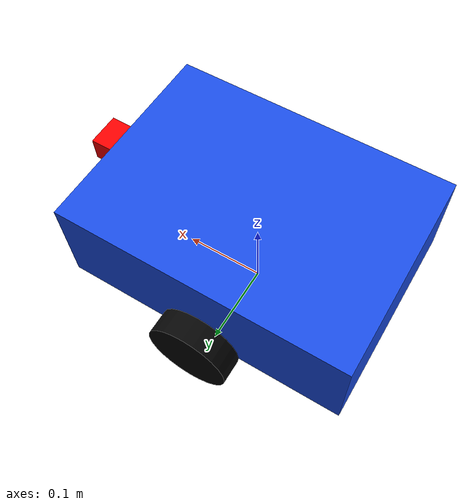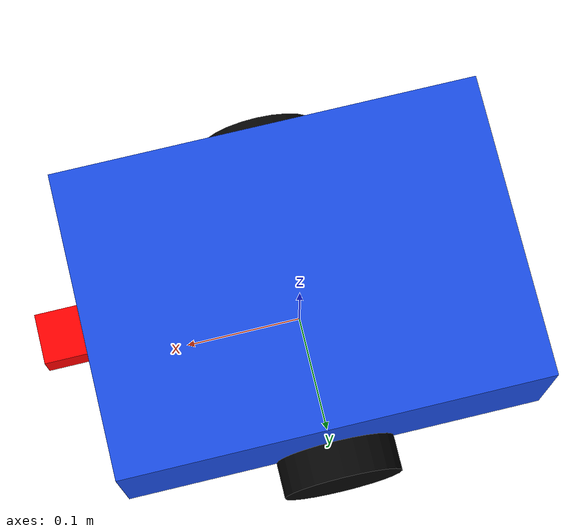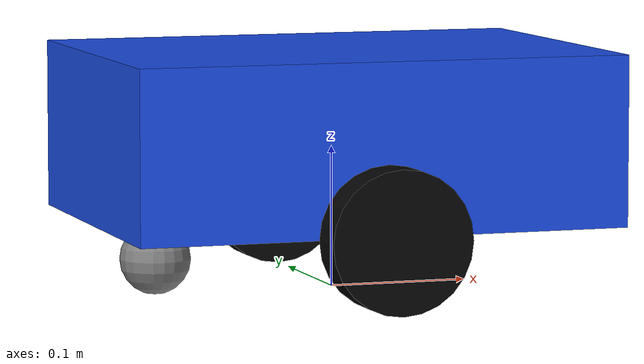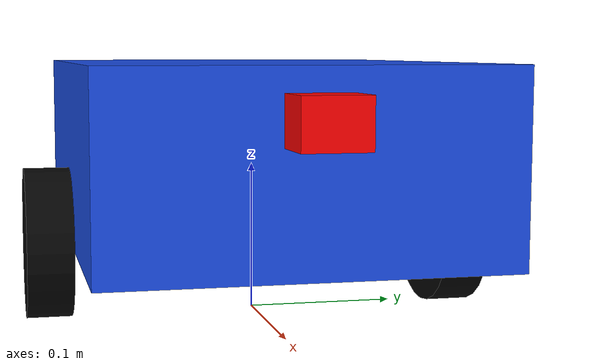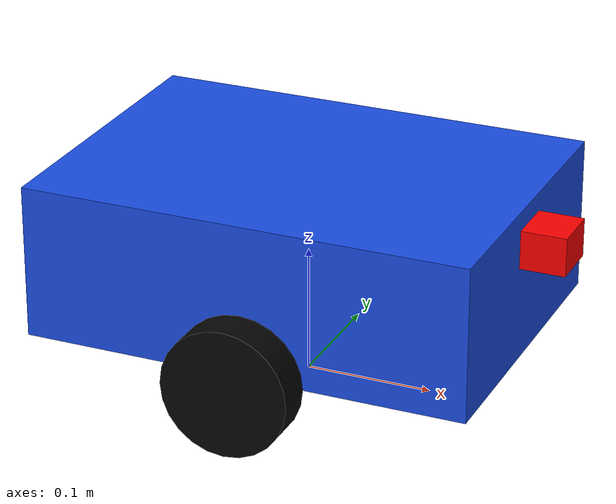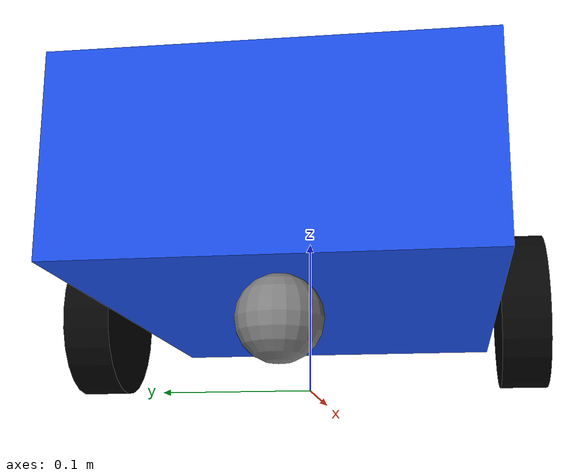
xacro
<?xml version="1.0"?>
<robot name="simple_diff_drive_robot" xmlns:xacro="http://www.ros.org/wiki/xacro">

  <!-- Properties -->

  <xacro:property name="base_length" value="0.35"/>
  <xacro:property name="base_width" value="0.25"/>
  <xacro:property name="base_height" value="0.12"/>

  <xacro:property name="wheel_radius" value="0.05"/>
  <xacro:property name="wheel_width" value="0.03"/>
  <xacro:property name="wheel_y_offset" value="0.14"/>
  <xacro:property name="wheel_x_offset" value="0.0"/>
  <xacro:property name="wheel_z_offset" value="${wheel_radius}"/>

  <xacro:property name="caster_radius" value="0.025"/>
  <xacro:property name="caster_x_offset" value="-0.13"/>
  <xacro:property name="caster_z_offset" value="${caster_radius}"/>

  <xacro:property name="laser_x_offset" value="0.18"/>
  <xacro:property name="laser_z_offset" value="0.14"/>

  <!-- Approximate inertial values -->
  <xacro:property name="base_mass" value="2.0"/>

  <!-- Materials -->

  <material name="blue">
    <color rgba="0.1 0.3 0.9 1.0"/>
  </material>

  <material name="black">
    <color rgba="0.02 0.02 0.02 1.0"/>
  </material>

  <material name="gray">
    <color rgba="0.5 0.5 0.5 1.0"/>
  </material>

  <material name="red">
    <color rgba="1.0 0.0 0.0 1.0"/>
  </material>

  <!-- Base Link -->

  <link name="base_link">
    <visual>
      <origin xyz="0 0 ${base_height / 2.0 + wheel_radius}" rpy="0 0 0"/>
      <geometry>
        <box size="${base_length} ${base_width} ${base_height}"/>
      </geometry>
      <material name="blue"/>
    </visual>

    <collision>
      <origin xyz="0 0 ${base_height / 2.0 + wheel_radius}" rpy="0 0 0"/>
      <geometry>
        <box size="${base_length} ${base_width} ${base_height}"/>
      </geometry>
    </collision>

    <inertial>
      <origin xyz="0 0 ${base_height / 2.0 + wheel_radius}" rpy="0 0 0"/>
      <mass value="${base_mass}"/>
      <inertia
        ixx="0.02" ixy="0.0" ixz="0.0"
        iyy="0.02" iyz="0.0"
        izz="0.02"/>
    </inertial>
  </link>

  <!-- Wheel Macro -->

  <xacro:macro name="wheel" params="prefix y_offset">
    <link name="${prefix}_wheel_link">
      <visual>
        <origin xyz="0 0 0" rpy="1.5708 0 0"/>
        <geometry>
          <cylinder radius="${wheel_radius}" length="${wheel_width}"/>
        </geometry>
        <material name="black"/>
      </visual>

      <collision>
        <origin xyz="0 0 0" rpy="1.5708 0 0"/>
        <geometry>
          <cylinder radius="${wheel_radius}" length="${wheel_width}"/>
        </geometry>
      </collision>

      <inertial>
        <origin xyz="0 0 0" rpy="0 0 0"/>
        <mass value="0.2"/>
        <inertia
          ixx="0.001" ixy="0.0" ixz="0.0"
          iyy="0.001" iyz="0.0"
          izz="0.001"/>
      </inertial>
    </link>

    <joint name="${prefix}_wheel_joint" type="continuous">
      <parent link="base_link"/>
      <child link="${prefix}_wheel_link"/>
      <origin xyz="${wheel_x_offset} ${y_offset} ${wheel_z_offset}" rpy="0 0 0"/>
      <axis xyz="0 1 0"/>
    </joint>
  </xacro:macro>

  <xacro:wheel prefix="left" y_offset="${wheel_y_offset}"/>
  <xacro:wheel prefix="right" y_offset="${-wheel_y_offset}"/>

  <!-- Caster -->

  <link name="caster_link">
    <visual>
      <origin xyz="0 0 0" rpy="0 0 0"/>
      <geometry>
        <sphere radius="${caster_radius}"/>
      </geometry>
      <material name="gray"/>
    </visual>

    <collision>
      <origin xyz="0 0 0" rpy="0 0 0"/>
      <geometry>
        <sphere radius="${caster_radius}"/>
      </geometry>
    </collision>

    <inertial>
      <origin xyz="0 0 0" rpy="0 0 0"/>
      <mass value="0.05"/>
      <inertia
        ixx="0.0001" ixy="0.0" ixz="0.0"
        iyy="0.0001" iyz="0.0"
        izz="0.0001"/>
    </inertial>
  </link>

  <joint name="caster_joint" type="fixed">
    <parent link="base_link"/>
    <child link="caster_link"/>
    <origin xyz="${caster_x_offset} 0 ${caster_z_offset}" rpy="0 0 0"/>
  </joint>

  <!-- Laser Link -->

  <link name="laser_link">
    <visual>
      <origin xyz="0 0 0" rpy="0 0 0"/>
      <geometry>
        <box size="0.06 0.04 0.03"/>
      </geometry>
      <material name="red"/>
    </visual>

    <collision>
      <origin xyz="0 0 0" rpy="0 0 0"/>
      <geometry>
        <box size="0.06 0.04 0.03"/>
      </geometry>
    </collision>

    <inertial>
      <origin xyz="0 0 0" rpy="0 0 0"/>
      <mass value="0.05"/>
      <inertia
        ixx="0.0001" ixy="0.0" ixz="0.0"
        iyy="0.0001" iyz="0.0"
        izz="0.0001"/>
    </inertial>
  </link>

  <joint name="laser_joint" type="fixed">
    <parent link="base_link"/>
    <child link="laser_link"/>
    <origin xyz="${laser_x_offset} 0 ${laser_z_offset}" rpy="0 0 0"/>
  </joint>

  <gazebo reference="laser_link">
    <sensor name="lidar" type="gpu_ray">
      <pose>0 0 0 0 0 0</pose>
      <topic>scan</topic>
      <frame_id>laser_link</frame_id>
      <update_rate>10</update_rate>
      <ray>
        <scan>
          <horizontal>
            <samples>360</samples>
            <resolution>1</resolution>
            <min_angle>-3.14159</min_angle>
            <max_angle>3.14159</max_angle>
          </horizontal>
        </scan>
        <range>
          <min>0.1</min>
          <max>12.0</max>
          <resolution>0.01</resolution>
        </range>
      </ray>
      <always_on>1</always_on>
      <visualize>true</visualize>
    </sensor>
  </gazebo>

  <gazebo>
    <plugin
      filename="gz-sim-sensors-system"
      name="gz::sim::systems::Sensors">
      <render_engine>ogre2</render_engine>
    </plugin>
  </gazebo>

  <!-- Gazebo Sim differential-drive controller -->
  <gazebo>
    <plugin
      filename="gz-sim-diff-drive-system"
      name="gz::sim::systems::DiffDrive">

      <left_joint>left_wheel_joint</left_joint>
      <right_joint>right_wheel_joint</right_joint>

      <wheel_separation>0.28</wheel_separation>
      <wheel_radius>0.05</wheel_radius>

      <topic>/cmd_vel</topic>
      <odom_topic>/odom</odom_topic>
      <tf_topic>/tf</tf_topic>

      <frame_id>odom</frame_id>
      <child_frame_id>base_link</child_frame_id>

      <odom_publish_frequency>30</odom_publish_frequency>
    </plugin>
  </gazebo>

</robot>
